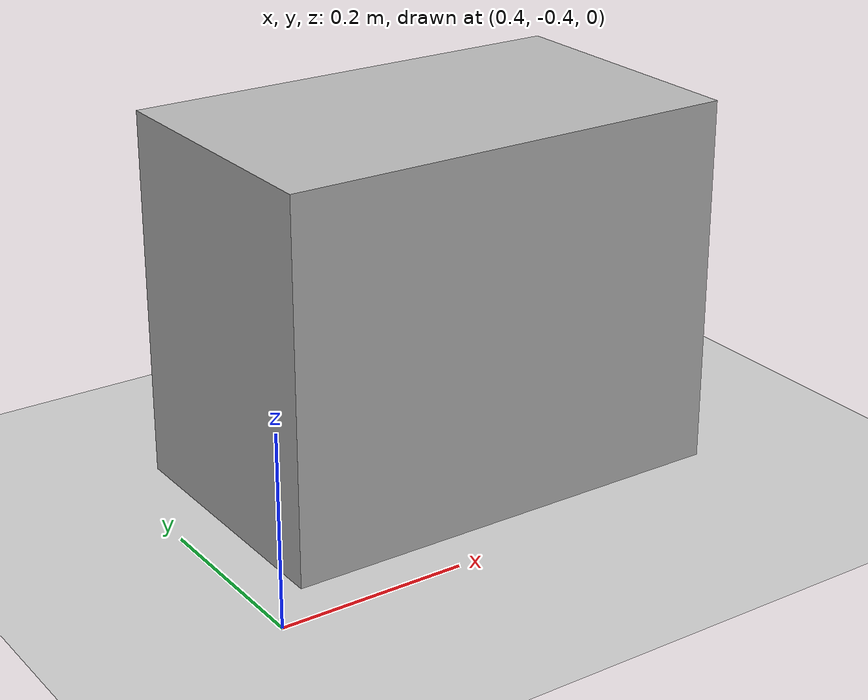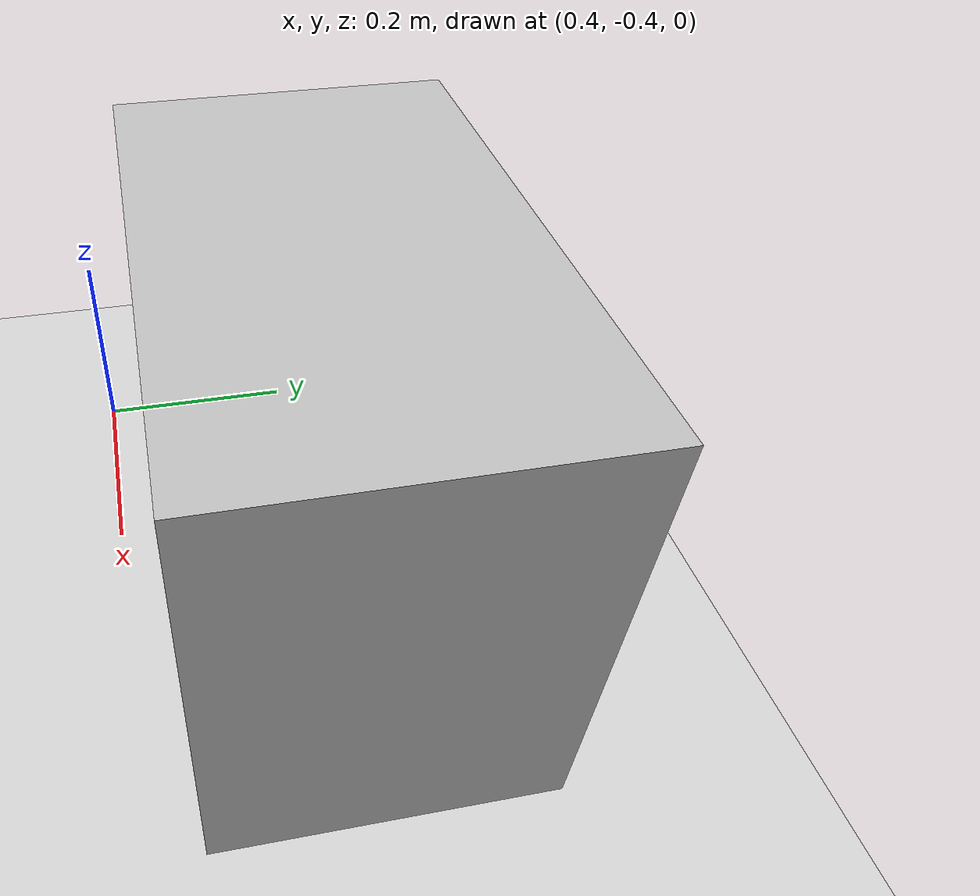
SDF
<?xml version="1.0" ?>
<sdf version="1.4">
  <world name="default">
    <include>
      <uri>model://ground_plane</uri>
    </include>
    <include>
      <uri>model://sun</uri>
    </include>

    <model name="stair">
      <pose>0.7 -0.2 0.2 0 0 0</pose>
      <static>true</static>
      <link name="link">
        <collision name="collision">
          <geometry>
            <box>
              <size>0.5 0.3 0.4</size>
            </box>
          </geometry>
        </collision>
        <visual name="visual">
          <geometry>
            <box>
              <size>0.5 0.3 0.4</size>
            </box>
          </geometry>
        </visual>
      </link>
    </model>

    <plugin name="ModelCollisionPlugin" filename="libUR10ModelCollisionPlugin.so"/>
  </world>
</sdf>
